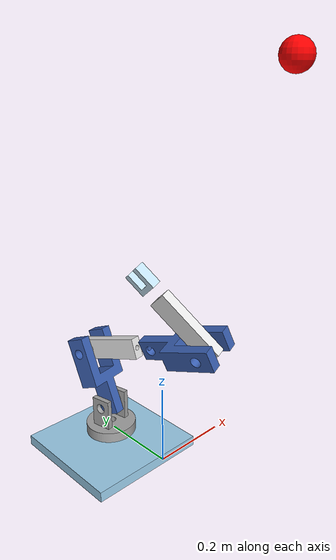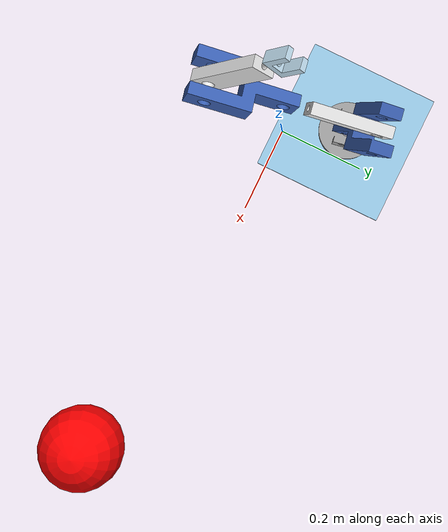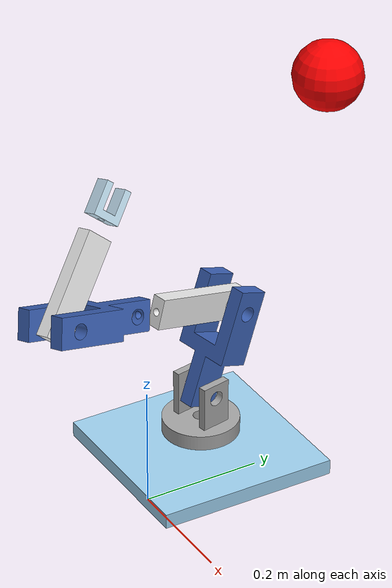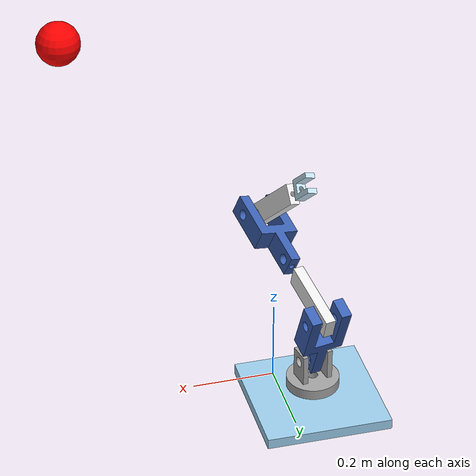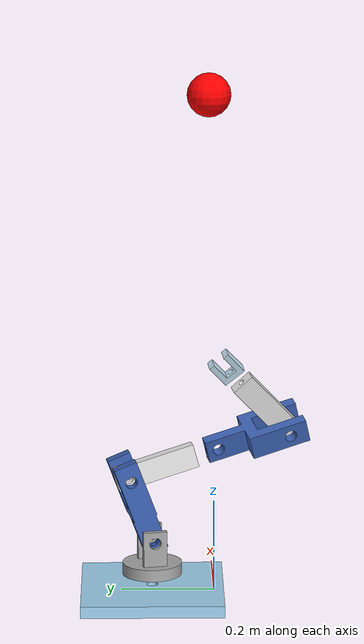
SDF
<?xml version="1.0" ?>
<!-- Generated using onshape-to-robot -->
<!-- Onshape document_id: 4af8569930bfdc776139afc6 -->
<sdf version="1.7">

<world name="default">
  <model name="mybot">
    <!-- Link base -->
    <link name="base">
      <inertial>
        <pose>-0.0595984 0.133273 0.0193778 0 0 0</pose>
        <mass>0.375499</mass>
        <inertia>
          <ixx>0.00294313</ixx>
          <ixy>0</ixy>
          <ixz>0</ixz>
          <iyy>0.00294313</iyy>
          <iyz>0</iyz>
          <izz>0.00584588</izz>
        </inertia>
      </inertial>
      <pose>0 0 0 0 -0 0</pose>
      <!-- Part base -->
      <visual name="base_visual_mesh_1">
        <pose relative_to="base">-0.0595984 0.133273 0.00667784 0 -0 0</pose>
        <geometry>
          <mesh>
            <uri>model://mybot/assets/base.stl</uri>
          </mesh>
        </geometry>
        <material>
          <ambient>0.615686 0.811765 0.929412 1</ambient>
          <diffuse>0.615686 0.811765 0.929412 1</diffuse>
          <specular>0.1 0.1 0.1 1</specular>
          <emissive>0 0 0 0</emissive>
        </material>
      </visual>
      <collision name="base_collision_mesh_2">
        <pose relative_to="base">-0.0595984 0.133273 0.00667784 0 -0 0</pose>
        <geometry>
          <mesh>
            <uri>model://mybot/assets/base.stl</uri>
          </mesh>
        </geometry>
      </collision>
    </link>
    <joint name="base_fixed_world" type="fixed">
      <parent>world</parent>
      <child>base</child>
    </joint>
    <!-- Link swivle -->
    <link name="swivle">
      <inertial>
        <pose>-0 -0 -0.0232936 0 0 0</pose>
        <mass>0.0630945</mass>
        <inertia>
          <ixx>9.0513e-05</ixx>
          <ixy>-0</ixy>
          <ixz>0</ixz>
          <iyy>0.000101179</iyy>
          <iyz>0</iyz>
          <izz>0.000120893</izz>
        </inertia>
      </inertial>
      <pose relative_to="base_rot">0 0 0 0 -0 0</pose>
      <!-- Part swivle -->
      <visual name="swivle_visual_mesh_1">
        <pose relative_to="swivle">-0 -0 0.0508 3.14159 -0 -0</pose>
        <geometry>
          <mesh>
            <uri>model://mybot/assets/swivle.stl</uri>
          </mesh>
        </geometry>
        <material>
          <ambient>0.647059 0.647059 0.647059 1</ambient>
          <diffuse>0.647059 0.647059 0.647059 1</diffuse>
          <specular>0.1 0.1 0.1 1</specular>
          <emissive>0 0 0 0</emissive>
        </material>
      </visual>
      <collision name="swivle_collision_mesh_2">
        <pose relative_to="swivle">-0 -0 0.0508 3.14159 -0 -0</pose>
        <geometry>
          <mesh>
            <uri>model://mybot/assets/swivle.stl</uri>
          </mesh>
        </geometry>
      </collision>
    </link>
    <!-- Link arm1 -->
    <link name="arm1">
      <inertial>
        <pose>-0.0757655 -0.0589887 -0.0127 0 0 0</pose>
        <mass>0.074836</mass>
        <inertia>
          <ixx>0.000166028</ixx>
          <ixy>-9.36746e-05</ixy>
          <ixz>-1e-12</ixz>
          <iyy>0.000213413</iyy>
          <iyz>-2e-12</iyz>
          <izz>0.000227704</izz>
        </inertia>
      </inertial>
      <pose relative_to="joint1">0 0 0 0 -0 0</pose>
      <!-- Part arm1 -->
      <visual name="arm1_visual_mesh_1">
        <pose relative_to="arm1">0 0.127 -0.0127 1.5708 1.5708 0</pose>
        <geometry>
          <mesh>
            <uri>model://mybot/assets/arm1.stl</uri>
          </mesh>
        </geometry>
        <material>
          <ambient>0.231373 0.380392 0.705882 1</ambient>
          <diffuse>0.231373 0.380392 0.705882 1</diffuse>
          <specular>0.1 0.1 0.1 1</specular>
          <emissive>0 0 0 0</emissive>
        </material>
      </visual>
      <collision name="arm1_collision_mesh_2">
        <pose relative_to="arm1">0 0.127 -0.0127 1.5708 1.5708 0</pose>
        <geometry>
          <mesh>
            <uri>model://mybot/assets/arm1.stl</uri>
          </mesh>
        </geometry>
      </collision>
    </link>
    <!-- Link arm2 -->
    <link name="arm2">
      <inertial>
        <pose>-0.0543508 -0.0377625 -0.0127 0 0 0</pose>
        <mass>0.0341329</mass>
        <inertia>
          <ixx>3.48126e-05</ixx>
          <ixy>-3.61968e-05</ixy>
          <ixz>-0</ixz>
          <iyy>6.17606e-05</iyy>
          <iyz>0</iyz>
          <izz>9.2858e-05</izz>
        </inertia>
      </inertial>
      <pose relative_to="joint2">0 0 0 0 -0 0</pose>
      <!-- Part arm2 -->
      <visual name="arm2_visual_mesh_1">
        <pose relative_to="arm2">0.120251 0.220624 -0.0127 1.5708 1.5708 0</pose>
        <geometry>
          <mesh>
            <uri>model://mybot/assets/arm2.stl</uri>
          </mesh>
        </geometry>
        <material>
          <ambient>0.917647 0.917647 0.917647 1</ambient>
          <diffuse>0.917647 0.917647 0.917647 1</diffuse>
          <specular>0.1 0.1 0.1 1</specular>
          <emissive>0 0 0 0</emissive>
        </material>
      </visual>
      <collision name="arm2_collision_mesh_2">
        <pose relative_to="arm2">0.120251 0.220624 -0.0127 1.5708 1.5708 0</pose>
        <geometry>
          <mesh>
            <uri>model://mybot/assets/arm2.stl</uri>
          </mesh>
        </geometry>
      </collision>
    </link>
    <!-- Link arm1_2 -->
    <link name="arm1_2">
      <inertial>
        <pose>5.93e-10 3.449e-09 -0.146821 0 0 0</pose>
        <mass>0.074836</mass>
        <inertia>
          <ixx>0.000231417</ixx>
          <ixy>1.42814e-05</ixy>
          <ixz>-6e-12</ixz>
          <iyy>0.000282632</iyy>
          <iyz>-2.9e-11</iyz>
          <izz>9.30962e-05</izz>
        </inertia>
      </inertial>
      <pose relative_to="wrist3">0 0 0 0 -0 0</pose>
      <!-- Part arm1_2 -->
      <visual name="arm1_2_visual_mesh_1">
        <pose relative_to="arm1_2">0.0252163 0.0969847 0.0272198 2.23233 -0 -0.254371</pose>
        <geometry>
          <mesh>
            <uri>model://mybot/assets/arm1.stl</uri>
          </mesh>
        </geometry>
        <material>
          <ambient>0.231373 0.380392 0.705882 1</ambient>
          <diffuse>0.231373 0.380392 0.705882 1</diffuse>
          <specular>0.1 0.1 0.1 1</specular>
          <emissive>0 0 0 0</emissive>
        </material>
      </visual>
      <collision name="arm1_2_collision_mesh_2">
        <pose relative_to="arm1_2">0.0252163 0.0969847 0.0272198 2.23233 -0 -0.254371</pose>
        <geometry>
          <mesh>
            <uri>model://mybot/assets/arm1.stl</uri>
          </mesh>
        </geometry>
      </collision>
    </link>
    <!-- Link arm2_2 -->
    <link name="arm2_2">
      <inertial>
        <pose>-0.0543508 -0.0377625 -0.0127 0 0 0</pose>
        <mass>0.0341329</mass>
        <inertia>
          <ixx>3.48126e-05</ixx>
          <ixy>-3.61968e-05</ixy>
          <ixz>0</ixz>
          <iyy>6.17606e-05</iyy>
          <iyz>0</iyz>
          <izz>9.2858e-05</izz>
        </inertia>
      </inertial>
      <pose relative_to="joint4">0 0 0 0 -0 0</pose>
      <!-- Part arm2_2 -->
      <visual name="arm2_2_visual_mesh_1">
        <pose relative_to="arm2_2">0.120251 0.220624 -0.0127 1.5708 1.5708 0</pose>
        <geometry>
          <mesh>
            <uri>model://mybot/assets/arm2.stl</uri>
          </mesh>
        </geometry>
        <material>
          <ambient>0.917647 0.917647 0.917647 1</ambient>
          <diffuse>0.917647 0.917647 0.917647 1</diffuse>
          <specular>0.1 0.1 0.1 1</specular>
          <emissive>0 0 0 0</emissive>
        </material>
      </visual>
      <collision name="arm2_2_collision_mesh_2">
        <pose relative_to="arm2_2">0.120251 0.220624 -0.0127 1.5708 1.5708 0</pose>
        <geometry>
          <mesh>
            <uri>model://mybot/assets/arm2.stl</uri>
          </mesh>
        </geometry>
      </collision>
    </link>
    <!-- Link hand -->
    <link name="hand">
      <inertial>
        <pose>-0 -0 -0.0252044 0 0 0</pose>
        <mass>0.00695227</mass>
        <inertia>
          <ixx>2.44576e-06</ixx>
          <ixy>-0</ixy>
          <ixz>0</ixz>
          <iyy>4.34857e-06</iyy>
          <iyz>-0</iyz>
          <izz>2.67285e-06</izz>
        </inertia>
      </inertial>
      <pose relative_to="wrist5">0 0 0 0 -0 0</pose>
      <!-- Part hand -->
      <visual name="hand_visual_mesh_1">
        <pose relative_to="hand">0.00580608 0.15067 0.407774 2.17802 -0 -0</pose>
        <geometry>
          <mesh>
            <uri>model://mybot/assets/hand.stl</uri>
          </mesh>
        </geometry>
        <material>
          <ambient>0.768627 0.886275 0.952941 1</ambient>
          <diffuse>0.768627 0.886275 0.952941 1</diffuse>
          <specular>0.1 0.1 0.1 1</specular>
          <emissive>0 0 0 0</emissive>
        </material>
      </visual>
      <collision name="hand_collision_mesh_2">
        <pose relative_to="hand">0.00580608 0.15067 0.407774 2.17802 -0 -0</pose>
        <geometry>
          <mesh>
            <uri>model://mybot/assets/hand.stl</uri>
          </mesh>
        </geometry>
      </collision>
    </link>
    <!-- Joint from arm2_2 to hand -->
    <joint name="wrist5" type="revolute">
      <pose relative_to="arm2_2">-0.146016 -0.101451 -0.0127 1.5708 -0.103846 2.17802</pose>
      <parent>arm2_2</parent>
      <child>hand</child>
      <axis>
        <xyz>0 0 1</xyz>
        <limit>
          <effort>10</effort>
          <velocity>10</velocity>
          <lower>-3.141592653589793</lower>
          <upper>3.141592653589793</upper>
        </limit>
        <dynamics>
          <friction>0.0</friction>
          <damping>0.0</damping>
        </dynamics>
      </axis>
    </joint>
    <!-- Joint from arm1_2 to arm2_2 -->
    <joint name="joint4" type="revolute">
      <pose relative_to="arm1_2">-0.0122913 0.00319579 -0.2032 1.5708 1.08193 -1.82517</pose>
      <parent>arm1_2</parent>
      <child>arm2_2</child>
      <axis>
        <xyz>0 0 1</xyz>
        <limit>
          <effort>10</effort>
          <velocity>10</velocity>
          <lower>-3.141592653589793</lower>
          <upper>3.141592653589793</upper>
        </limit>
        <dynamics>
          <friction>0.0</friction>
          <damping>0.0</damping>
        </dynamics>
      </axis>
    </joint>
    <!-- Joint from arm2 to arm1_2 -->
    <joint name="wrist3" type="revolute">
      <pose relative_to="arm2">-0.125156 -0.0869577 -0.0127 -0.607222 1.5708 0</pose>
      <parent>arm2</parent>
      <child>arm1_2</child>
      <axis>
        <xyz>0 0 1</xyz>
        <limit>
          <effort>10</effort>
          <velocity>10</velocity>
          <lower>-3.141592653589793</lower>
          <upper>3.141592653589793</upper>
        </limit>
        <dynamics>
          <friction>0.0</friction>
          <damping>0.0</damping>
        </dynamics>
      </axis>
    </joint>
    <!-- Joint from arm1 to arm2 -->
    <joint name="joint2" type="revolute">
      <pose relative_to="arm1">-0.120251 -0.0936238 -0 0 0 1.71304</pose>
      <parent>arm1</parent>
      <child>arm2</child>
      <axis>
        <xyz>0 0 1</xyz>
        <limit>
          <effort>10</effort>
          <velocity>10</velocity>
          <lower>-3.141592653589793</lower>
          <upper>3.141592653589793</upper>
        </limit>
        <dynamics>
          <friction>0.0</friction>
          <damping>0.0</damping>
        </dynamics>
      </axis>
    </joint>
    <!-- Joint from swivle to arm1 -->
    <joint name="joint1" type="revolute">
      <pose relative_to="swivle">-0.0127 0 -0.0762 1.5708 -0.550725 -1.5708</pose>
      <parent>swivle</parent>
      <child>arm1</child>
      <axis>
        <xyz>0 0 1</xyz>
        <limit>
          <effort>10</effort>
          <velocity>10</velocity>
          <lower>-3.141592653589793</lower>
          <upper>3.141592653589793</upper>
        </limit>
        <dynamics>
          <friction>0.0</friction>
          <damping>0.0</damping>
        </dynamics>
      </axis>
    </joint>
    <!-- Joint from base to swivle -->
    <joint name="base_rot" type="revolute">
      <pose relative_to="base">-0.0595984 0.133273 0.0574778 3.14159 -0 -2.95606</pose>
      <parent>base</parent>
      <child>swivle</child>
      <axis>
        <xyz>0 0 1</xyz>
        <limit>
          <effort>10</effort>
          <velocity>10</velocity>
          <lower>-3.141592653589793</lower>
          <upper>3.141592653589793</upper>
        </limit>
        <dynamics>
          <friction>0.0</friction>
          <damping>0.0</damping>
        </dynamics>
      </axis>
    </joint>

    <plugin filename="gz-sim-joint-position-controller-system" name="gz::sim::systems::JointPositionController">
        <joint_name>base_rot</joint_name>
        <p_gain>100.0</p_gain>
        <i_gain>0.1</i_gain>
        <d_gain>0.01</d_gain>
    </plugin>
    <plugin filename="gz-sim-joint-position-controller-system" name="gz::sim::systems::JointPositionController">
        <joint_name>joint1</joint_name>
        <p_gain>100.0</p_gain>
        <i_gain>0.1</i_gain>
        <d_gain>0.01</d_gain>
    </plugin>
    <plugin filename="gz-sim-joint-position-controller-system" name="gz::sim::systems::JointPositionController">
        <joint_name>joint2</joint_name>
        <p_gain>100.0</p_gain>
        <i_gain>0.1</i_gain>
        <d_gain>0.01</d_gain>
    </plugin>
    <plugin filename="gz-sim-joint-position-controller-system" name="gz::sim::systems::JointPositionController">
        <joint_name>wrist3</joint_name>
        <p_gain>100.0</p_gain>
        <i_gain>0.1</i_gain>
        <d_gain>0.01</d_gain>
    </plugin>
    <plugin filename="gz-sim-joint-position-controller-system" name="gz::sim::systems::JointPositionController">
        <joint_name>joint4</joint_name>
        <p_gain>100.0</p_gain>
        <i_gain>0.1</i_gain>
        <d_gain>0.01</d_gain>
    </plugin>
    <plugin filename="gz-sim-joint-position-controller-system" name="gz::sim::systems::JointPositionController">
        <joint_name>wrist5</joint_name>
        <p_gain>100.0</p_gain>
        <i_gain>0.1</i_gain>
        <d_gain>0.01</d_gain>
    </plugin>

  </model>

  <model name="target_sphere">
    <pose>0.5 0.0 1.0 0 0 0</pose> <link name="sphere_link">
      <kinematic>true</kinematic>
      <gravity>false</gravity>

      <visual name="visual">
        <geometry>
          <sphere><radius>0.05</radius></sphere>
        </geometry>
        <material>
          <ambient>1 0 0 1</ambient>
          <diffuse>1 0 0 1</diffuse>
        </material>
      </visual>

    </link>

    <plugin filename="gz-sim-pose-publisher-system" name="gz::sim::systems::PosePublisher">
      <publish_link_pose>false</publish_link_pose>
      <publish_model_pose>true</publish_model_pose>
      <update_frequency>20</update_frequency>
    </plugin>
  </model>

</world>

</sdf>
